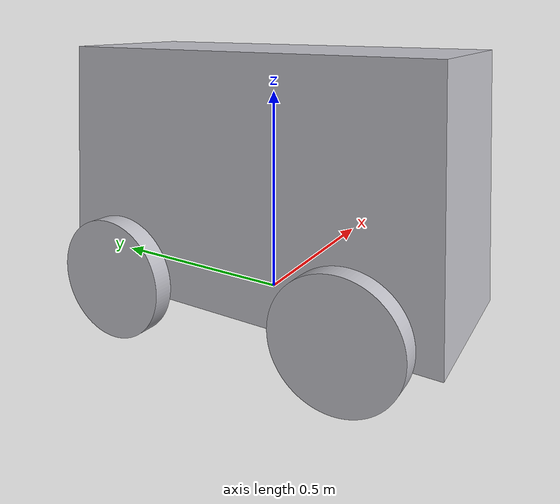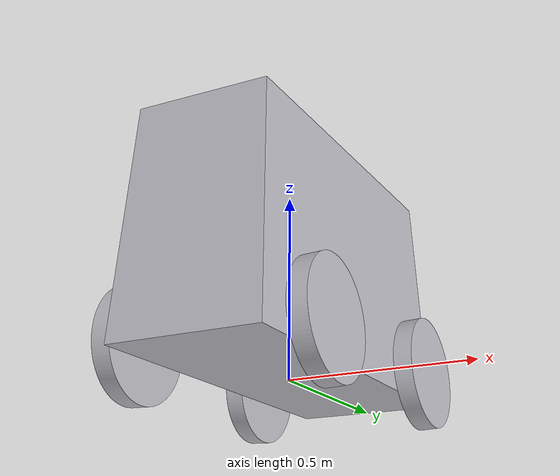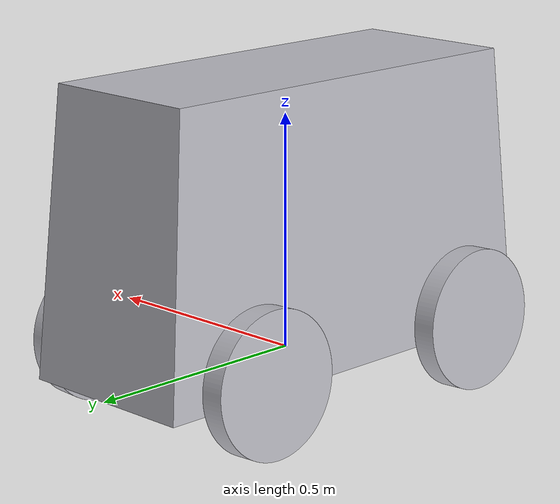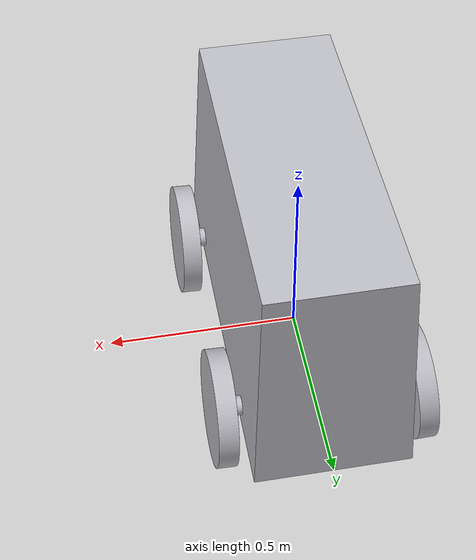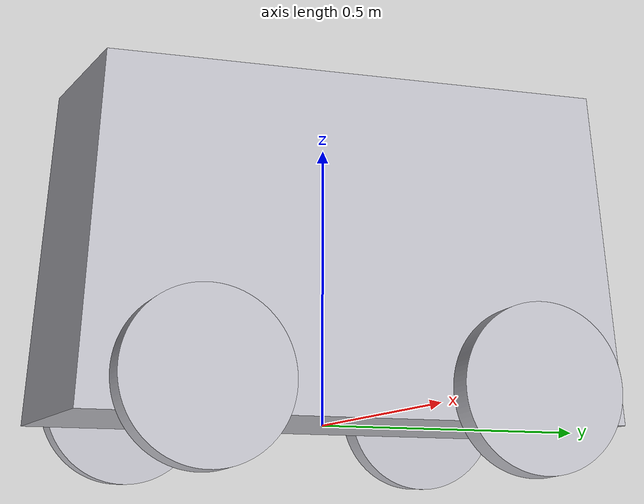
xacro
<?xml version="1.0" ?>
<robot name="car" xmlns:xacro="http://www.ros.org/wiki/xacro">

<xacro:include filename="$(find car_description)/urdf/materials.xacro" />
<xacro:include filename="$(find car_description)/urdf/car.trans" />
<xacro:include filename="$(find car_description)/urdf/car.gazebo" />
<link name="base_link">
  <inertial>
    <origin xyz="-4.347188282745399e-17 -2.1996772710691717e-14 0.28782290289670287" rpy="0 0 0"/>
    <mass value="1681.7496126748006"/>
    <inertia ixx="177.464322" iyy="70.213838" izz="147.057999" ixy="-0.0" iyz="-0.0" ixz="-0.0"/>
  </inertial>
  <visual>
    <origin xyz="0 0 0" rpy="0 0 0"/>
    <geometry>
      <mesh filename="file://$(find car_description)/meshes/base_link.stl" scale="0.001 0.001 0.001"/>
    </geometry>
    <material name="silver"/>
  </visual>
  <collision>
    <origin xyz="0 0 0" rpy="0 0 0"/>
    <geometry>
      <mesh filename="file://$(find car_description)/meshes/base_link.stl" scale="0.001 0.001 0.001"/>
    </geometry>
  </collision>
</link>

<link name="back_left_wheel_1">
  <inertial>
    <origin xyz="-0.02497879178447024 0.0 0.0010403336137875877" rpy="0 0 0"/>
    <mass value="27.74419012201489"/>
    <inertia ixx="0.311862" iyy="0.161841" izz="0.162102" ixy="0.0" iyz="0.0" ixz="-0.006251"/>
  </inertial>
  <visual>
    <origin xyz="0.227892 0.3 -0.051206" rpy="0 0 0"/>
    <geometry>
      <mesh filename="file://$(find car_description)/meshes/back_left_wheel_1.stl" scale="0.001 0.001 0.001"/>
    </geometry>
    <material name="silver"/>
  </visual>
  <collision>
    <origin xyz="0.227892 0.3 -0.051206" rpy="0 0 0"/>
    <geometry>
      <mesh filename="file://$(find car_description)/meshes/back_left_wheel_1.stl" scale="0.001 0.001 0.001"/>
    </geometry>
  </collision>
</link>

<link name="back_right_wheel_1">
  <inertial>
    <origin xyz="0.024978791784470183 5.551115123125783e-17 0.0010403336137875946" rpy="0 0 0"/>
    <mass value="27.744190122014896"/>
    <inertia ixx="0.311862" iyy="0.161841" izz="0.162102" ixy="0.0" iyz="0.0" ixz="0.006251"/>
  </inertial>
  <visual>
    <origin xyz="-0.227892 0.3 -0.051206" rpy="0 0 0"/>
    <geometry>
      <mesh filename="file://$(find car_description)/meshes/back_right_wheel_1.stl" scale="0.001 0.001 0.001"/>
    </geometry>
    <material name="silver"/>
  </visual>
  <collision>
    <origin xyz="-0.227892 0.3 -0.051206" rpy="0 0 0"/>
    <geometry>
      <mesh filename="file://$(find car_description)/meshes/back_right_wheel_1.stl" scale="0.001 0.001 0.001"/>
    </geometry>
  </collision>
</link>

<link name="front_left_wheel_1">
  <inertial>
    <origin xyz="-0.02497879178447024 5.551115123125783e-17 0.0010403336137876015" rpy="0 0 0"/>
    <mass value="27.7441901220149"/>
    <inertia ixx="0.311862" iyy="0.161841" izz="0.162102" ixy="0.0" iyz="-0.0" ixz="-0.006251"/>
  </inertial>
  <visual>
    <origin xyz="0.227892 -0.3 -0.051206" rpy="0 0 0"/>
    <geometry>
      <mesh filename="file://$(find car_description)/meshes/front_left_wheel_1.stl" scale="0.001 0.001 0.001"/>
    </geometry>
    <material name="silver"/>
  </visual>
  <collision>
    <origin xyz="0.227892 -0.3 -0.051206" rpy="0 0 0"/>
    <geometry>
      <mesh filename="file://$(find car_description)/meshes/front_left_wheel_1.stl" scale="0.001 0.001 0.001"/>
    </geometry>
  </collision>
</link>

<link name="front_right_wheel_1">
  <inertial>
    <origin xyz="0.02497879178447024 5.551115123125783e-17 0.0010403336137875946" rpy="0 0 0"/>
    <mass value="27.744190122014906"/>
    <inertia ixx="0.311862" iyy="0.161841" izz="0.162102" ixy="0.0" iyz="0.0" ixz="0.006251"/>
  </inertial>
  <visual>
    <origin xyz="-0.227892 -0.3 -0.051206" rpy="0 0 0"/>
    <geometry>
      <mesh filename="file://$(find car_description)/meshes/front_right_wheel_1.stl" scale="0.001 0.001 0.001"/>
    </geometry>
    <material name="silver"/>
  </visual>
  <collision>
    <origin xyz="-0.227892 -0.3 -0.051206" rpy="0 0 0"/>
    <geometry>
      <mesh filename="file://$(find car_description)/meshes/front_right_wheel_1.stl" scale="0.001 0.001 0.001"/>
    </geometry>
  </collision>
</link>

<joint name="back_left_wheel_to_base_link" type="continuous">
  <origin xyz="-0.227892 -0.3 0.051206" rpy="0 0 0"/>
  <parent link="base_link"/>
  <child link="back_left_wheel_1"/>
  <axis xyz="-0.999133 0.0 0.041631"/>
</joint>

<joint name="right_left_wheel_to_base_footprint" type="continuous">
  <origin xyz="0.227892 -0.3 0.051206" rpy="0 0 0"/>
  <parent link="base_link"/>
  <child link="back_right_wheel_1"/>
  <axis xyz="0.999133 0.0 0.041631"/>
</joint>

<joint name="front_left_wheel_to_base_footprint" type="continuous">
  <origin xyz="-0.227892 0.3 0.051206" rpy="0 0 0"/>
  <parent link="base_link"/>
  <child link="front_left_wheel_1"/>
  <axis xyz="-0.999133 0.0 0.041631"/>
</joint>

<joint name="front_right_wheel_to_base_footprint" type="continuous">
  <origin xyz="0.227892 0.3 0.051206" rpy="0 0 0"/>
  <parent link="base_link"/>
  <child link="front_right_wheel_1"/>
  <axis xyz="0.999133 0.0 0.041631"/>
</joint>

</robot>

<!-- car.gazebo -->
<robot name="car" xmlns:xacro="http://www.ros.org/wiki/xacro" >

<xacro:property name="body_color" value="Gazebo/Silver" />

<gazebo>
  <plugin name="control" filename="libgazebo_ros_control.so"/>
</gazebo>
<gazebo reference="base_link">
  <material>${body_color}</material>
  <mu1>0.2</mu1>
  <mu2>0.2</mu2>
  <self_collide>true</self_collide>
  <gravity>true</gravity>
</gazebo>

<gazebo reference="back_left_wheel_1">
  <material>${body_color}</material>
  <mu1>0.2</mu1>
  <mu2>0.2</mu2>
  <self_collide>true</self_collide>
</gazebo>

<gazebo reference="back_right_wheel_1">
  <material>${body_color}</material>
  <mu1>0.2</mu1>
  <mu2>0.2</mu2>
  <self_collide>true</self_collide>
</gazebo>

<gazebo reference="front_left_wheel_1">
  <material>${body_color}</material>
  <mu1>0.2</mu1>
  <mu2>0.2</mu2>
  <self_collide>true</self_collide>
</gazebo>

<gazebo reference="front_right_wheel_1">
  <material>${body_color}</material>
  <mu1>0.2</mu1>
  <mu2>0.2</mu2>
  <self_collide>true</self_collide>
</gazebo>

</robot>
